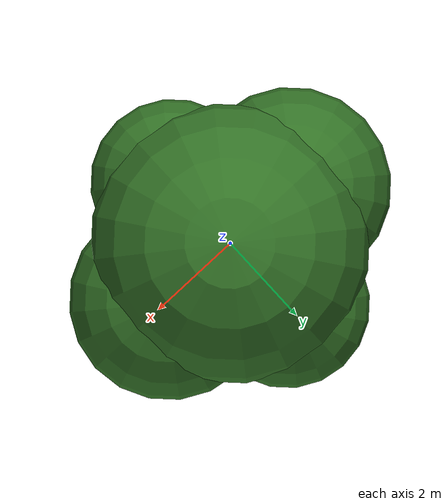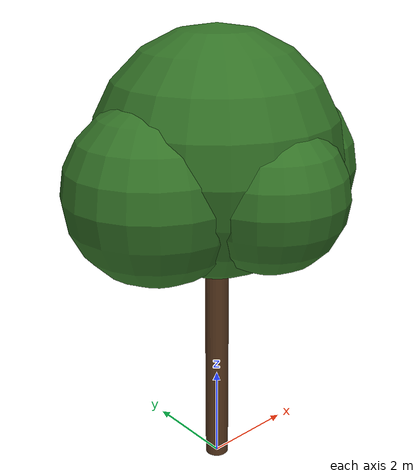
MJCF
<mujoco>
  <!-- Oak/Deciduous tree with round canopy -->
  <asset>
    <material name="oak_trunk" rgba="0.35 0.22 0.12 1"/>
    <material name="oak_foliage" rgba="0.2 0.45 0.15 1"/>
  </asset>

  <worldbody>
    <body name="oak_tree_root">
      <!-- Trunk -->
      <geom name="trunk" type="cylinder" size="0.25 2.5" pos="0 0 2.5" material="oak_trunk"/>

      <!-- Main branches -->
      <geom name="branch_1" type="capsule" size="0.08 0.8" pos="0.5 0 5.0" euler="0 45 0" material="oak_trunk"/>
      <geom name="branch_2" type="capsule" size="0.08 0.8" pos="-0.5 0 5.0" euler="0 -45 0" material="oak_trunk"/>

      <!-- Canopy (spherical shape) -->
      <geom name="canopy_center" type="sphere" size="2.5" pos="0 0 7.0" material="oak_foliage"/>
      <geom name="canopy_left" type="sphere" size="1.8" pos="-1.5 0 6.5" material="oak_foliage"/>
      <geom name="canopy_right" type="sphere" size="1.8" pos="1.5 0 6.5" material="oak_foliage"/>
      <geom name="canopy_front" type="sphere" size="1.5" pos="0 1.5 6.5" material="oak_foliage"/>
      <geom name="canopy_back" type="sphere" size="1.5" pos="0 -1.5 6.5" material="oak_foliage"/>
    </body>
  </worldbody>
</mujoco>
